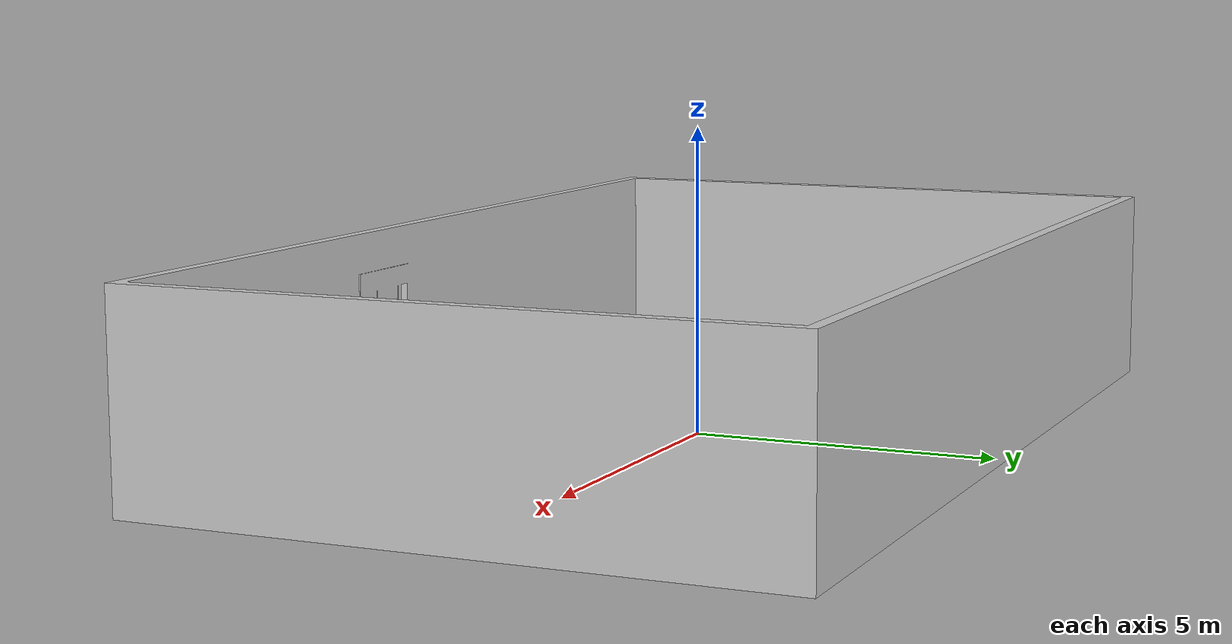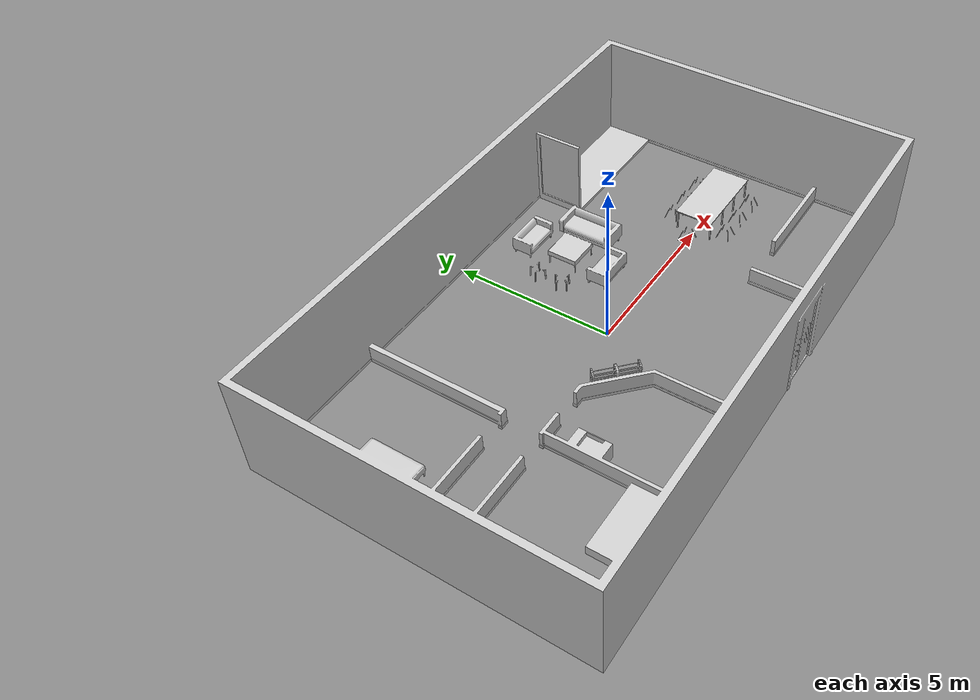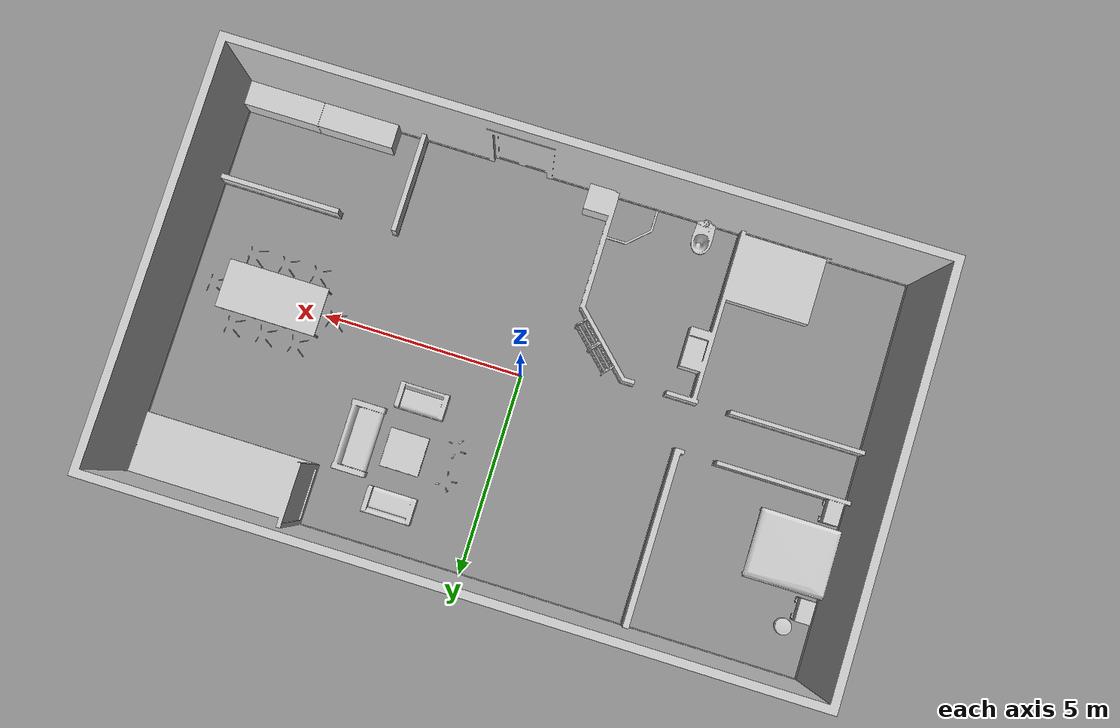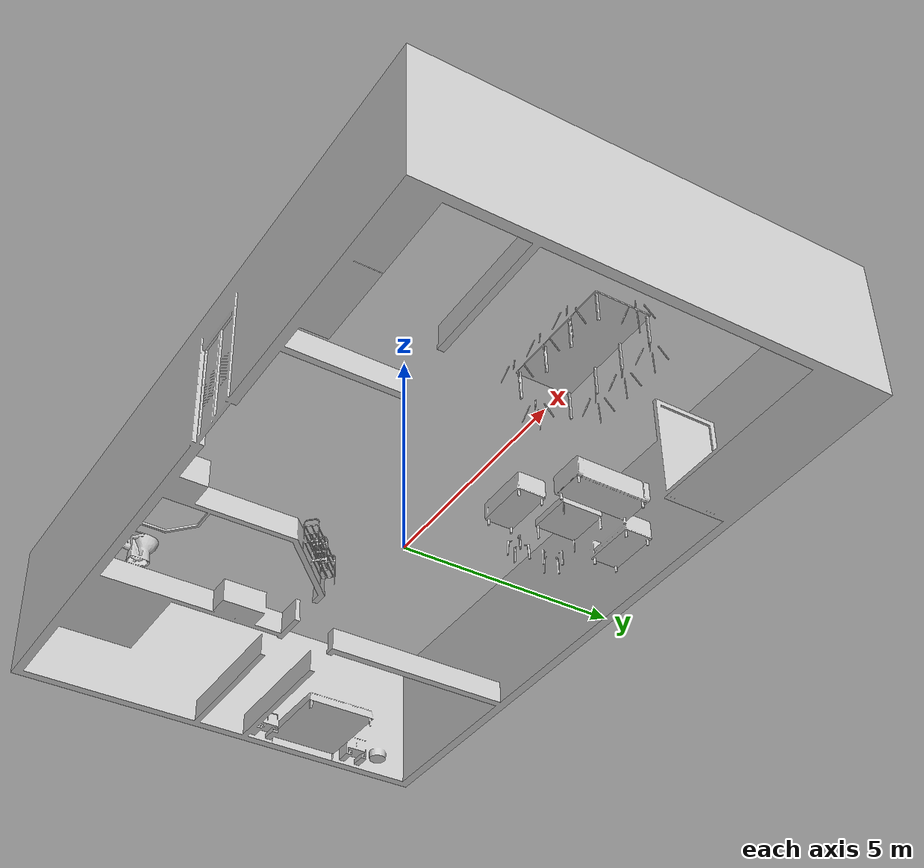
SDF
<?xml version="1.0" ?>
<sdf version="1.4">
  <model name="test_room">
    <link name="link">
      <inertial>
        <mass>150</mass>
        <inertia>
          <ixx>0.0</ixx>
          <ixy>0.0</ixy>
          <ixz>0.0</ixz>
          <iyy>0.0</iyy>
          <iyz>0.0</iyz>
          <izz>0.0</izz>
        </inertia>
      </inertial>
      <collision name="collision">
        <pose>0 0 0 0 0 0</pose>
        <geometry>
          <mesh>
            <uri>model://test_room/TestRoomLite.dae</uri>
          </mesh>
        </geometry>
      </collision>
      <visual name="visual">
        <pose>0 0 0 0 0 0</pose>
        <geometry>
          <mesh>
            <uri>model://test_room/TestRoomLite.dae</uri>
          </mesh>
        </geometry>
      </visual>
    </link>
    <static>1</static>
  </model>
</sdf>
